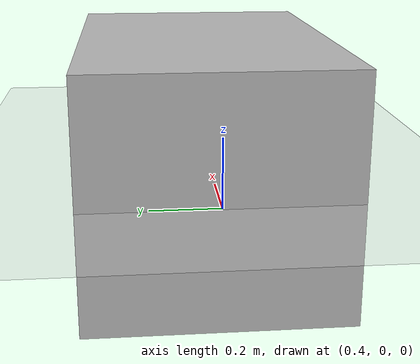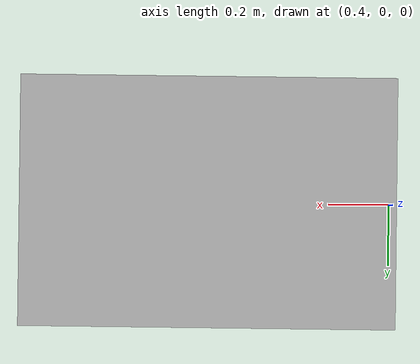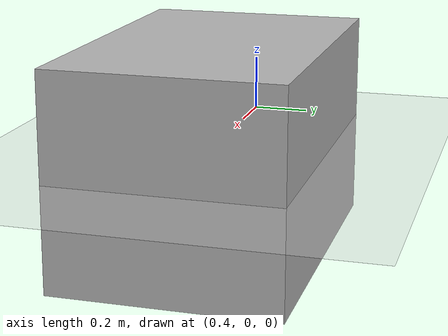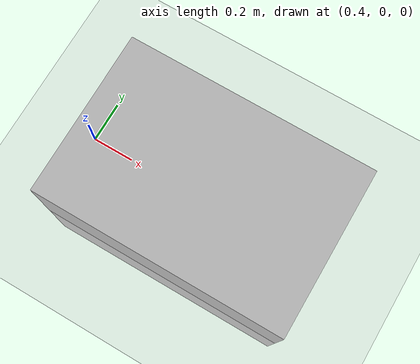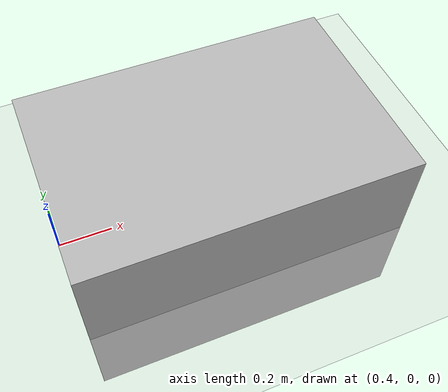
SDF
<?xml version="1.0" ?>
<sdf version="1.6">

  <world name="warehouse">

    <include>
      <uri>model://ground_plane</uri>
    </include>

    <include>
      <uri>model://sun</uri>
    </include>

    <model name="table">

      <pose>1 0 0 0 0 0</pose>

      <link name="link">

        <collision name="collision">
          <geometry>
            <box>
              <size>1.2 0.8 0.75</size>
            </box>
          </geometry>
        </collision>

        <visual name="visual">
          <geometry>
            <box>
              <size>1.2 0.8 0.75</size>
            </box>
          </geometry>
        </visual>

      </link>

    </model>

  </world>

</sdf>
